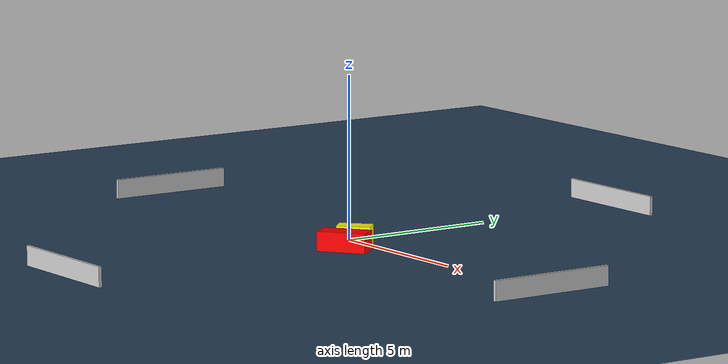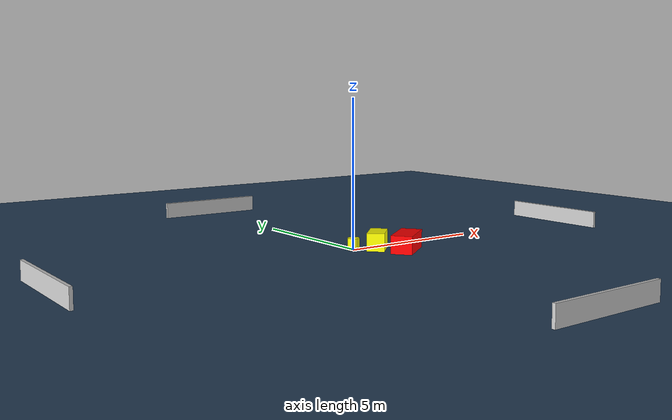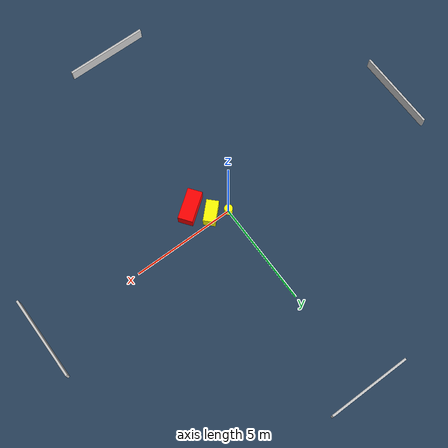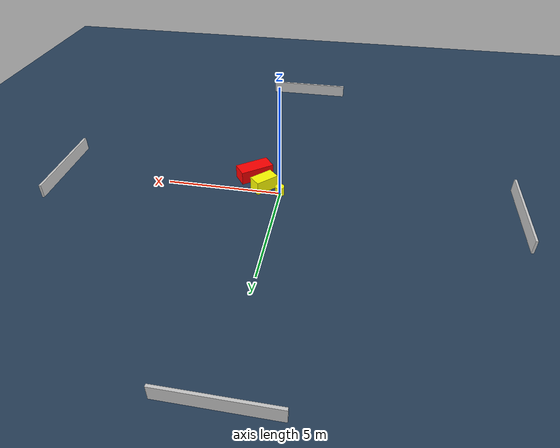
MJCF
<?xml version="1.0" ?>
<mujoco model="generated_environment">
  <option timestep="0.01" integrator="RK4" cone="elliptic"/>
  <default>
    <geom density="1"/>
  </default>
  <asset>
    <texture builtin="gradient" height="3072" name="skybox" rgb1="0.3 0.5 0.7" rgb2="0 0 0" type="skybox" width="512"/>
    <texture builtin="checker" height="300" name="groundplane" rgb1="0.2 0.3 0.4" rgb2="0.1 0.2 0.3" type="2d" width="300"/>
    <material name="groundplane" reflectance="0.2" texrepeat="5 5" texture="groundplane"/>
  </asset>
  <worldbody>
    <light dir="0 0 -1" directional="true" pos="0 0 1.5"/>
    <geom condim="3" friction="0.5 0.005 0.001" material="groundplane" name="floor" pos="0 0 0" size="0 0 0.05" type="plane"/>
    <body name="walls">
      <geom name="wall_1" condim="4" pos="-10.0 0.0 0.3" rgba="0.800000011920929 0.800000011920929 0.800000011920929 1.0" size="0.05 2.0 0.3" type="box"/>
      <geom name="wall_2" condim="4" pos="10.0 0.0 0.3" rgba="0.800000011920929 0.800000011920929 0.800000011920929 1.0" size="0.05 2.0 0.3" type="box"/>
      <geom name="wall_3" condim="4" pos="0.0 -10.0 0.3" rgba="0.800000011920929 0.800000011920929 0.800000011920929 1.0" size="2.0 0.05 0.3" type="box"/>
      <geom name="wall_4" condim="4" pos="0.0 10.0 0.3" rgba="0.800000011920929 0.800000011920929 0.800000011920929 1.0" size="2.0 0.05 0.3" type="box"/>
    </body>
    <body name="robot">
      <joint name="joint_x" type="slide" pos="0 0 0" axis="1 0 0"/>
      <joint name="joint_y" type="slide" pos="0 0 0" axis="0 1 0"/>
      <geom name="robot" type="cylinder" pos="0.0 0.0 0.2" size="0.2 0.2 0.0" mass="5.0" friction="1.0 0.005 0.0001" condim="4" rgba="1.0 1.0 0.0 1.0"/>
    </body>
    <body name="obstacle_1_movable">
      <geom name="obstacle_1_movable" condim="4" pos="0.7512855657442254 -0.32326282392085554 0.3" euler="0 0 134.7645116183279" friction="0.0 0.005 0.001" rgba="1.0 1.0 0.0 1.0" size="0.2905264320290757 0.5211385590154876 0.3" type="box" mass="0.1"/>
      <joint type="free"/>
    </body>
    <body name="obstacle_2_static">
      <geom name="obstacle_2_static" condim="4" pos="1.3444875298581693 -1.1137451379050036 0.3" euler="0 0 216.59403203717295" friction="0.0 0.005 0.001" rgba="1.0 0.0 0.0 1.0" size="0.7527603972210359 0.35160016820293427 0.3" type="box"/>
    </body>
  </worldbody>
  <actuator>
    <motor name="actuator_x" joint="joint_x" gear="1" ctrlrange="-1 1"/>
    <motor name="actuator_y" joint="joint_y" gear="1" ctrlrange="-1 1"/>
  </actuator>
</mujoco>
